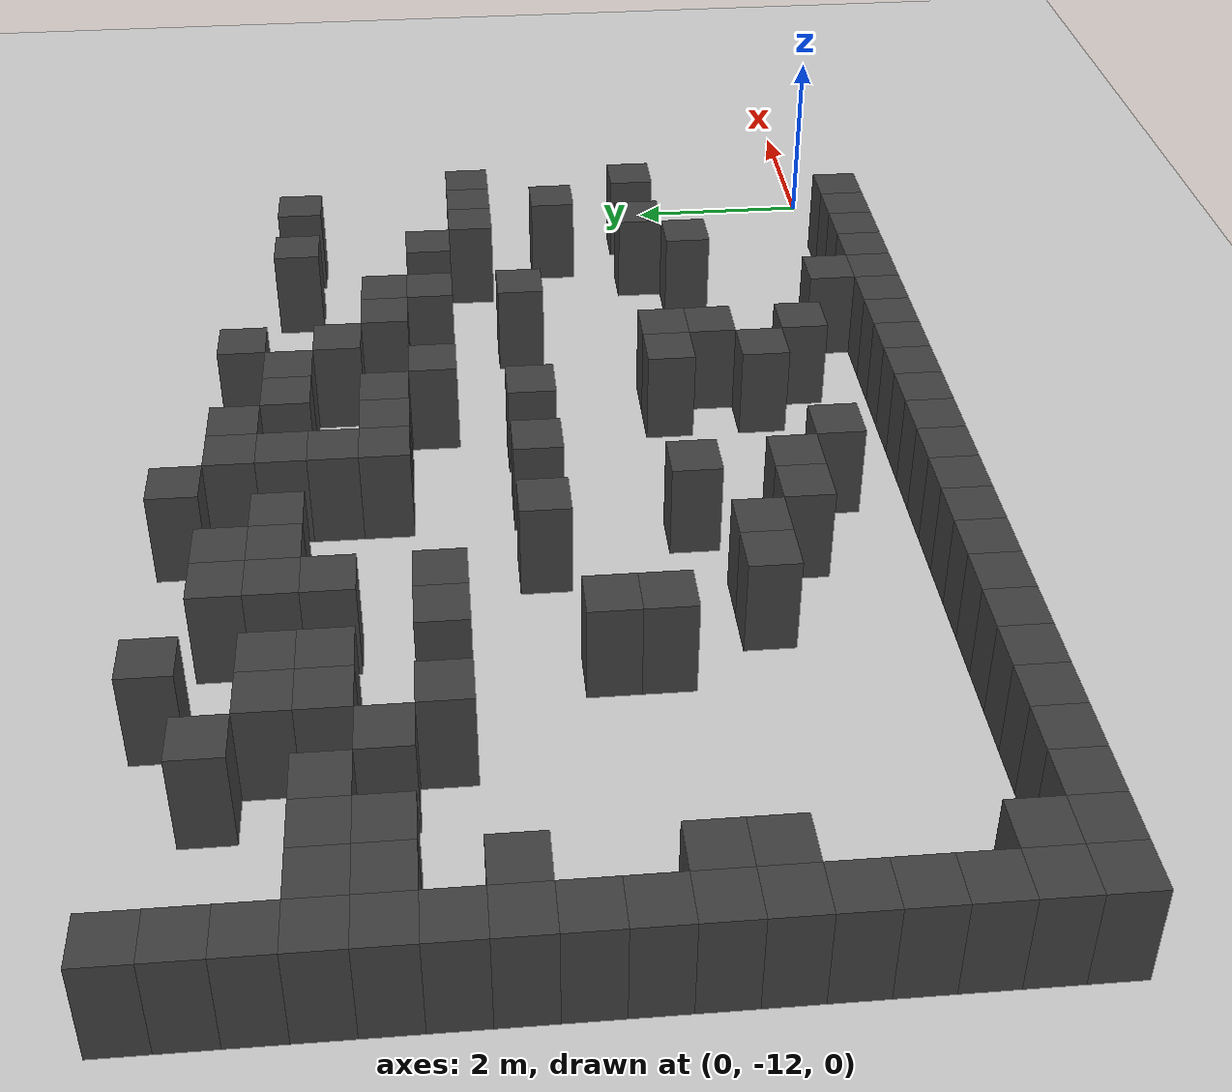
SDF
<sdf version="1.7">
 <world name="map_3955">
  <model name="ground_plane">
   <static>true</static>
   <link name="link">
    <collision name="collision">
     <geometry><plane><normal>0 0 1</normal><size>200 200</size></plane></geometry>
    </collision>
    <visual name="visual">
     <geometry><plane><normal>0 0 1</normal><size>200 200</size></plane></geometry>
     <material><ambient>0.8 0.8 0.8 1</ambient><diffuse>0.8 0.8 0.8 1</diffuse></material>
    </visual>
   </link>
  </model>
  <model name="maze_environment">
   <static>true</static>
   <link name="wall_415">
    <pose>-12.250 -4.750 0.500 0 0 0</pose>
    <collision name="col"><geometry><box><size>0.5 0.5 1.0</size></box></geometry></collision>
    <visual name="vis">
     <geometry><box><size>0.5 0.5 1.0</size></box></geometry>
     <material><ambient>0.15 0.15 0.15 1</ambient><diffuse>0.25 0.25 0.25 1</diffuse></material>
    </visual>
   </link>
   <link name="wall_416">
    <pose>-9.250 -4.750 0.500 0 0 0</pose>
    <collision name="col"><geometry><box><size>0.5 0.5 1.0</size></box></geometry></collision>
    <visual name="vis">
     <geometry><box><size>0.5 0.5 1.0</size></box></geometry>
     <material><ambient>0.15 0.15 0.15 1</ambient><diffuse>0.25 0.25 0.25 1</diffuse></material>
    </visual>
   </link>
   <link name="wall_417">
    <pose>-6.750 -4.750 0.500 0 0 0</pose>
    <collision name="col"><geometry><box><size>0.5 0.5 1.0</size></box></geometry></collision>
    <visual name="vis">
     <geometry><box><size>0.5 0.5 1.0</size></box></geometry>
     <material><ambient>0.15 0.15 0.15 1</ambient><diffuse>0.25 0.25 0.25 1</diffuse></material>
    </visual>
   </link>
   <link name="wall_426">
    <pose>-12.250 -5.250 0.500 0 0 0</pose>
    <collision name="col"><geometry><box><size>0.5 0.5 1.0</size></box></geometry></collision>
    <visual name="vis">
     <geometry><box><size>0.5 0.5 1.0</size></box></geometry>
     <material><ambient>0.15 0.15 0.15 1</ambient><diffuse>0.25 0.25 0.25 1</diffuse></material>
    </visual>
   </link>
   <link name="wall_427">
    <pose>-10.250 -5.250 0.500 0 0 0</pose>
    <collision name="col"><geometry><box><size>0.5 0.5 1.0</size></box></geometry></collision>
    <visual name="vis">
     <geometry><box><size>0.5 0.5 1.0</size></box></geometry>
     <material><ambient>0.15 0.15 0.15 1</ambient><diffuse>0.25 0.25 0.25 1</diffuse></material>
    </visual>
   </link>
   <link name="wall_428">
    <pose>-8.250 -5.250 0.500 0 0 0</pose>
    <collision name="col"><geometry><box><size>0.5 0.5 1.0</size></box></geometry></collision>
    <visual name="vis">
     <geometry><box><size>0.5 0.5 1.0</size></box></geometry>
     <material><ambient>0.15 0.15 0.15 1</ambient><diffuse>0.25 0.25 0.25 1</diffuse></material>
    </visual>
   </link>
   <link name="wall_429">
    <pose>-7.750 -5.250 0.500 0 0 0</pose>
    <collision name="col"><geometry><box><size>0.5 0.5 1.0</size></box></geometry></collision>
    <visual name="vis">
     <geometry><box><size>0.5 0.5 1.0</size></box></geometry>
     <material><ambient>0.15 0.15 0.15 1</ambient><diffuse>0.25 0.25 0.25 1</diffuse></material>
    </visual>
   </link>
   <link name="wall_430">
    <pose>-6.250 -5.250 0.500 0 0 0</pose>
    <collision name="col"><geometry><box><size>0.5 0.5 1.0</size></box></geometry></collision>
    <visual name="vis">
     <geometry><box><size>0.5 0.5 1.0</size></box></geometry>
     <material><ambient>0.15 0.15 0.15 1</ambient><diffuse>0.25 0.25 0.25 1</diffuse></material>
    </visual>
   </link>
   <link name="wall_431">
    <pose>-5.750 -5.250 0.500 0 0 0</pose>
    <collision name="col"><geometry><box><size>0.5 0.5 1.0</size></box></geometry></collision>
    <visual name="vis">
     <geometry><box><size>0.5 0.5 1.0</size></box></geometry>
     <material><ambient>0.15 0.15 0.15 1</ambient><diffuse>0.25 0.25 0.25 1</diffuse></material>
    </visual>
   </link>
   <link name="wall_432">
    <pose>-4.250 -5.250 0.500 0 0 0</pose>
    <collision name="col"><geometry><box><size>0.5 0.5 1.0</size></box></geometry></collision>
    <visual name="vis">
     <geometry><box><size>0.5 0.5 1.0</size></box></geometry>
     <material><ambient>0.15 0.15 0.15 1</ambient><diffuse>0.25 0.25 0.25 1</diffuse></material>
    </visual>
   </link>
   <link name="wall_436">
    <pose>-12.250 -5.750 0.500 0 0 0</pose>
    <collision name="col"><geometry><box><size>0.5 0.5 1.0</size></box></geometry></collision>
    <visual name="vis">
     <geometry><box><size>0.5 0.5 1.0</size></box></geometry>
     <material><ambient>0.15 0.15 0.15 1</ambient><diffuse>0.25 0.25 0.25 1</diffuse></material>
    </visual>
   </link>
   <link name="wall_437">
    <pose>-9.750 -5.750 0.500 0 0 0</pose>
    <collision name="col"><geometry><box><size>0.5 0.5 1.0</size></box></geometry></collision>
    <visual name="vis">
     <geometry><box><size>0.5 0.5 1.0</size></box></geometry>
     <material><ambient>0.15 0.15 0.15 1</ambient><diffuse>0.25 0.25 0.25 1</diffuse></material>
    </visual>
   </link>
   <link name="wall_438">
    <pose>-9.250 -5.750 0.500 0 0 0</pose>
    <collision name="col"><geometry><box><size>0.5 0.5 1.0</size></box></geometry></collision>
    <visual name="vis">
     <geometry><box><size>0.5 0.5 1.0</size></box></geometry>
     <material><ambient>0.15 0.15 0.15 1</ambient><diffuse>0.25 0.25 0.25 1</diffuse></material>
    </visual>
   </link>
   <link name="wall_439">
    <pose>-8.250 -5.750 0.500 0 0 0</pose>
    <collision name="col"><geometry><box><size>0.5 0.5 1.0</size></box></geometry></collision>
    <visual name="vis">
     <geometry><box><size>0.5 0.5 1.0</size></box></geometry>
     <material><ambient>0.15 0.15 0.15 1</ambient><diffuse>0.25 0.25 0.25 1</diffuse></material>
    </visual>
   </link>
   <link name="wall_440">
    <pose>-7.750 -5.750 0.500 0 0 0</pose>
    <collision name="col"><geometry><box><size>0.5 0.5 1.0</size></box></geometry></collision>
    <visual name="vis">
     <geometry><box><size>0.5 0.5 1.0</size></box></geometry>
     <material><ambient>0.15 0.15 0.15 1</ambient><diffuse>0.25 0.25 0.25 1</diffuse></material>
    </visual>
   </link>
   <link name="wall_441">
    <pose>-7.250 -5.750 0.500 0 0 0</pose>
    <collision name="col"><geometry><box><size>0.5 0.5 1.0</size></box></geometry></collision>
    <visual name="vis">
     <geometry><box><size>0.5 0.5 1.0</size></box></geometry>
     <material><ambient>0.15 0.15 0.15 1</ambient><diffuse>0.25 0.25 0.25 1</diffuse></material>
    </visual>
   </link>
   <link name="wall_442">
    <pose>-6.250 -5.750 0.500 0 0 0</pose>
    <collision name="col"><geometry><box><size>0.5 0.5 1.0</size></box></geometry></collision>
    <visual name="vis">
     <geometry><box><size>0.5 0.5 1.0</size></box></geometry>
     <material><ambient>0.15 0.15 0.15 1</ambient><diffuse>0.25 0.25 0.25 1</diffuse></material>
    </visual>
   </link>
   <link name="wall_443">
    <pose>-5.250 -5.750 0.500 0 0 0</pose>
    <collision name="col"><geometry><box><size>0.5 0.5 1.0</size></box></geometry></collision>
    <visual name="vis">
     <geometry><box><size>0.5 0.5 1.0</size></box></geometry>
     <material><ambient>0.15 0.15 0.15 1</ambient><diffuse>0.25 0.25 0.25 1</diffuse></material>
    </visual>
   </link>
   <link name="wall_444">
    <pose>-4.750 -5.750 0.500 0 0 0</pose>
    <collision name="col"><geometry><box><size>0.5 0.5 1.0</size></box></geometry></collision>
    <visual name="vis">
     <geometry><box><size>0.5 0.5 1.0</size></box></geometry>
     <material><ambient>0.15 0.15 0.15 1</ambient><diffuse>0.25 0.25 0.25 1</diffuse></material>
    </visual>
   </link>
   <link name="wall_445">
    <pose>-2.250 -5.750 0.500 0 0 0</pose>
    <collision name="col"><geometry><box><size>0.5 0.5 1.0</size></box></geometry></collision>
    <visual name="vis">
     <geometry><box><size>0.5 0.5 1.0</size></box></geometry>
     <material><ambient>0.15 0.15 0.15 1</ambient><diffuse>0.25 0.25 0.25 1</diffuse></material>
    </visual>
   </link>
   <link name="wall_446">
    <pose>-1.250 -5.750 0.500 0 0 0</pose>
    <collision name="col"><geometry><box><size>0.5 0.5 1.0</size></box></geometry></collision>
    <visual name="vis">
     <geometry><box><size>0.5 0.5 1.0</size></box></geometry>
     <material><ambient>0.15 0.15 0.15 1</ambient><diffuse>0.25 0.25 0.25 1</diffuse></material>
    </visual>
   </link>
   <link name="wall_451">
    <pose>-12.250 -6.250 0.500 0 0 0</pose>
    <collision name="col"><geometry><box><size>0.5 0.5 1.0</size></box></geometry></collision>
    <visual name="vis">
     <geometry><box><size>0.5 0.5 1.0</size></box></geometry>
     <material><ambient>0.15 0.15 0.15 1</ambient><diffuse>0.25 0.25 0.25 1</diffuse></material>
    </visual>
   </link>
   <link name="wall_452">
    <pose>-11.750 -6.250 0.500 0 0 0</pose>
    <collision name="col"><geometry><box><size>0.5 0.5 1.0</size></box></geometry></collision>
    <visual name="vis">
     <geometry><box><size>0.5 0.5 1.0</size></box></geometry>
     <material><ambient>0.15 0.15 0.15 1</ambient><diffuse>0.25 0.25 0.25 1</diffuse></material>
    </visual>
   </link>
   <link name="wall_453">
    <pose>-11.250 -6.250 0.500 0 0 0</pose>
    <collision name="col"><geometry><box><size>0.5 0.5 1.0</size></box></geometry></collision>
    <visual name="vis">
     <geometry><box><size>0.5 0.5 1.0</size></box></geometry>
     <material><ambient>0.15 0.15 0.15 1</ambient><diffuse>0.25 0.25 0.25 1</diffuse></material>
    </visual>
   </link>
   <link name="wall_454">
    <pose>-10.750 -6.250 0.500 0 0 0</pose>
    <collision name="col"><geometry><box><size>0.5 0.5 1.0</size></box></geometry></collision>
    <visual name="vis">
     <geometry><box><size>0.5 0.5 1.0</size></box></geometry>
     <material><ambient>0.15 0.15 0.15 1</ambient><diffuse>0.25 0.25 0.25 1</diffuse></material>
    </visual>
   </link>
   <link name="wall_455">
    <pose>-9.750 -6.250 0.500 0 0 0</pose>
    <collision name="col"><geometry><box><size>0.5 0.5 1.0</size></box></geometry></collision>
    <visual name="vis">
     <geometry><box><size>0.5 0.5 1.0</size></box></geometry>
     <material><ambient>0.15 0.15 0.15 1</ambient><diffuse>0.25 0.25 0.25 1</diffuse></material>
    </visual>
   </link>
   <link name="wall_456">
    <pose>-9.250 -6.250 0.500 0 0 0</pose>
    <collision name="col"><geometry><box><size>0.5 0.5 1.0</size></box></geometry></collision>
    <visual name="vis">
     <geometry><box><size>0.5 0.5 1.0</size></box></geometry>
     <material><ambient>0.15 0.15 0.15 1</ambient><diffuse>0.25 0.25 0.25 1</diffuse></material>
    </visual>
   </link>
   <link name="wall_457">
    <pose>-8.250 -6.250 0.500 0 0 0</pose>
    <collision name="col"><geometry><box><size>0.5 0.5 1.0</size></box></geometry></collision>
    <visual name="vis">
     <geometry><box><size>0.5 0.5 1.0</size></box></geometry>
     <material><ambient>0.15 0.15 0.15 1</ambient><diffuse>0.25 0.25 0.25 1</diffuse></material>
    </visual>
   </link>
   <link name="wall_458">
    <pose>-6.250 -6.250 0.500 0 0 0</pose>
    <collision name="col"><geometry><box><size>0.5 0.5 1.0</size></box></geometry></collision>
    <visual name="vis">
     <geometry><box><size>0.5 0.5 1.0</size></box></geometry>
     <material><ambient>0.15 0.15 0.15 1</ambient><diffuse>0.25 0.25 0.25 1</diffuse></material>
    </visual>
   </link>
   <link name="wall_459">
    <pose>-4.250 -6.250 0.500 0 0 0</pose>
    <collision name="col"><geometry><box><size>0.5 0.5 1.0</size></box></geometry></collision>
    <visual name="vis">
     <geometry><box><size>0.5 0.5 1.0</size></box></geometry>
     <material><ambient>0.15 0.15 0.15 1</ambient><diffuse>0.25 0.25 0.25 1</diffuse></material>
    </visual>
   </link>
   <link name="wall_466">
    <pose>-12.250 -6.750 0.500 0 0 0</pose>
    <collision name="col"><geometry><box><size>0.5 0.5 1.0</size></box></geometry></collision>
    <visual name="vis">
     <geometry><box><size>0.5 0.5 1.0</size></box></geometry>
     <material><ambient>0.15 0.15 0.15 1</ambient><diffuse>0.25 0.25 0.25 1</diffuse></material>
    </visual>
   </link>
   <link name="wall_467">
    <pose>-11.750 -6.750 0.500 0 0 0</pose>
    <collision name="col"><geometry><box><size>0.5 0.5 1.0</size></box></geometry></collision>
    <visual name="vis">
     <geometry><box><size>0.5 0.5 1.0</size></box></geometry>
     <material><ambient>0.15 0.15 0.15 1</ambient><diffuse>0.25 0.25 0.25 1</diffuse></material>
    </visual>
   </link>
   <link name="wall_468">
    <pose>-11.250 -6.750 0.500 0 0 0</pose>
    <collision name="col"><geometry><box><size>0.5 0.5 1.0</size></box></geometry></collision>
    <visual name="vis">
     <geometry><box><size>0.5 0.5 1.0</size></box></geometry>
     <material><ambient>0.15 0.15 0.15 1</ambient><diffuse>0.25 0.25 0.25 1</diffuse></material>
    </visual>
   </link>
   <link name="wall_469">
    <pose>-10.250 -6.750 0.500 0 0 0</pose>
    <collision name="col"><geometry><box><size>0.5 0.5 1.0</size></box></geometry></collision>
    <visual name="vis">
     <geometry><box><size>0.5 0.5 1.0</size></box></geometry>
     <material><ambient>0.15 0.15 0.15 1</ambient><diffuse>0.25 0.25 0.25 1</diffuse></material>
    </visual>
   </link>
   <link name="wall_470">
    <pose>-6.250 -6.750 0.500 0 0 0</pose>
    <collision name="col"><geometry><box><size>0.5 0.5 1.0</size></box></geometry></collision>
    <visual name="vis">
     <geometry><box><size>0.5 0.5 1.0</size></box></geometry>
     <material><ambient>0.15 0.15 0.15 1</ambient><diffuse>0.25 0.25 0.25 1</diffuse></material>
    </visual>
   </link>
   <link name="wall_471">
    <pose>-5.750 -6.750 0.500 0 0 0</pose>
    <collision name="col"><geometry><box><size>0.5 0.5 1.0</size></box></geometry></collision>
    <visual name="vis">
     <geometry><box><size>0.5 0.5 1.0</size></box></geometry>
     <material><ambient>0.15 0.15 0.15 1</ambient><diffuse>0.25 0.25 0.25 1</diffuse></material>
    </visual>
   </link>
   <link name="wall_472">
    <pose>-5.250 -6.750 0.500 0 0 0</pose>
    <collision name="col"><geometry><box><size>0.5 0.5 1.0</size></box></geometry></collision>
    <visual name="vis">
     <geometry><box><size>0.5 0.5 1.0</size></box></geometry>
     <material><ambient>0.15 0.15 0.15 1</ambient><diffuse>0.25 0.25 0.25 1</diffuse></material>
    </visual>
   </link>
   <link name="wall_473">
    <pose>-3.750 -6.750 0.500 0 0 0</pose>
    <collision name="col"><geometry><box><size>0.5 0.5 1.0</size></box></geometry></collision>
    <visual name="vis">
     <geometry><box><size>0.5 0.5 1.0</size></box></geometry>
     <material><ambient>0.15 0.15 0.15 1</ambient><diffuse>0.25 0.25 0.25 1</diffuse></material>
    </visual>
   </link>
   <link name="wall_474">
    <pose>-3.250 -6.750 0.500 0 0 0</pose>
    <collision name="col"><geometry><box><size>0.5 0.5 1.0</size></box></geometry></collision>
    <visual name="vis">
     <geometry><box><size>0.5 0.5 1.0</size></box></geometry>
     <material><ambient>0.15 0.15 0.15 1</ambient><diffuse>0.25 0.25 0.25 1</diffuse></material>
    </visual>
   </link>
   <link name="wall_477">
    <pose>-12.250 -7.250 0.500 0 0 0</pose>
    <collision name="col"><geometry><box><size>0.5 0.5 1.0</size></box></geometry></collision>
    <visual name="vis">
     <geometry><box><size>0.5 0.5 1.0</size></box></geometry>
     <material><ambient>0.15 0.15 0.15 1</ambient><diffuse>0.25 0.25 0.25 1</diffuse></material>
    </visual>
   </link>
   <link name="wall_478">
    <pose>-9.750 -7.250 0.500 0 0 0</pose>
    <collision name="col"><geometry><box><size>0.5 0.5 1.0</size></box></geometry></collision>
    <visual name="vis">
     <geometry><box><size>0.5 0.5 1.0</size></box></geometry>
     <material><ambient>0.15 0.15 0.15 1</ambient><diffuse>0.25 0.25 0.25 1</diffuse></material>
    </visual>
   </link>
   <link name="wall_479">
    <pose>-8.750 -7.250 0.500 0 0 0</pose>
    <collision name="col"><geometry><box><size>0.5 0.5 1.0</size></box></geometry></collision>
    <visual name="vis">
     <geometry><box><size>0.5 0.5 1.0</size></box></geometry>
     <material><ambient>0.15 0.15 0.15 1</ambient><diffuse>0.25 0.25 0.25 1</diffuse></material>
    </visual>
   </link>
   <link name="wall_480">
    <pose>-8.250 -7.250 0.500 0 0 0</pose>
    <collision name="col"><geometry><box><size>0.5 0.5 1.0</size></box></geometry></collision>
    <visual name="vis">
     <geometry><box><size>0.5 0.5 1.0</size></box></geometry>
     <material><ambient>0.15 0.15 0.15 1</ambient><diffuse>0.25 0.25 0.25 1</diffuse></material>
    </visual>
   </link>
   <link name="wall_481">
    <pose>-4.750 -7.250 0.500 0 0 0</pose>
    <collision name="col"><geometry><box><size>0.5 0.5 1.0</size></box></geometry></collision>
    <visual name="vis">
     <geometry><box><size>0.5 0.5 1.0</size></box></geometry>
     <material><ambient>0.15 0.15 0.15 1</ambient><diffuse>0.25 0.25 0.25 1</diffuse></material>
    </visual>
   </link>
   <link name="wall_482">
    <pose>-3.250 -7.250 0.500 0 0 0</pose>
    <collision name="col"><geometry><box><size>0.5 0.5 1.0</size></box></geometry></collision>
    <visual name="vis">
     <geometry><box><size>0.5 0.5 1.0</size></box></geometry>
     <material><ambient>0.15 0.15 0.15 1</ambient><diffuse>0.25 0.25 0.25 1</diffuse></material>
    </visual>
   </link>
   <link name="wall_483">
    <pose>-2.250 -7.250 0.500 0 0 0</pose>
    <collision name="col"><geometry><box><size>0.5 0.5 1.0</size></box></geometry></collision>
    <visual name="vis">
     <geometry><box><size>0.5 0.5 1.0</size></box></geometry>
     <material><ambient>0.15 0.15 0.15 1</ambient><diffuse>0.25 0.25 0.25 1</diffuse></material>
    </visual>
   </link>
   <link name="wall_490">
    <pose>-12.250 -7.750 0.500 0 0 0</pose>
    <collision name="col"><geometry><box><size>0.5 0.5 1.0</size></box></geometry></collision>
    <visual name="vis">
     <geometry><box><size>0.5 0.5 1.0</size></box></geometry>
     <material><ambient>0.15 0.15 0.15 1</ambient><diffuse>0.25 0.25 0.25 1</diffuse></material>
    </visual>
   </link>
   <link name="wall_491">
    <pose>-11.750 -7.750 0.500 0 0 0</pose>
    <collision name="col"><geometry><box><size>0.5 0.5 1.0</size></box></geometry></collision>
    <visual name="vis">
     <geometry><box><size>0.5 0.5 1.0</size></box></geometry>
     <material><ambient>0.15 0.15 0.15 1</ambient><diffuse>0.25 0.25 0.25 1</diffuse></material>
    </visual>
   </link>
   <link name="wall_492">
    <pose>-1.750 -7.750 0.500 0 0 0</pose>
    <collision name="col"><geometry><box><size>0.5 0.5 1.0</size></box></geometry></collision>
    <visual name="vis">
     <geometry><box><size>0.5 0.5 1.0</size></box></geometry>
     <material><ambient>0.15 0.15 0.15 1</ambient><diffuse>0.25 0.25 0.25 1</diffuse></material>
    </visual>
   </link>
   <link name="wall_493">
    <pose>-1.250 -7.750 0.500 0 0 0</pose>
    <collision name="col"><geometry><box><size>0.5 0.5 1.0</size></box></geometry></collision>
    <visual name="vis">
     <geometry><box><size>0.5 0.5 1.0</size></box></geometry>
     <material><ambient>0.15 0.15 0.15 1</ambient><diffuse>0.25 0.25 0.25 1</diffuse></material>
    </visual>
   </link>
   <link name="wall_494">
    <pose>-0.750 -7.750 0.500 0 0 0</pose>
    <collision name="col"><geometry><box><size>0.5 0.5 1.0</size></box></geometry></collision>
    <visual name="vis">
     <geometry><box><size>0.5 0.5 1.0</size></box></geometry>
     <material><ambient>0.15 0.15 0.15 1</ambient><diffuse>0.25 0.25 0.25 1</diffuse></material>
    </visual>
   </link>
   <link name="wall_504">
    <pose>-12.250 -8.250 0.500 0 0 0</pose>
    <collision name="col"><geometry><box><size>0.5 0.5 1.0</size></box></geometry></collision>
    <visual name="vis">
     <geometry><box><size>0.5 0.5 1.0</size></box></geometry>
     <material><ambient>0.15 0.15 0.15 1</ambient><diffuse>0.25 0.25 0.25 1</diffuse></material>
    </visual>
   </link>
   <link name="wall_505">
    <pose>-7.250 -8.250 0.500 0 0 0</pose>
    <collision name="col"><geometry><box><size>0.5 0.5 1.0</size></box></geometry></collision>
    <visual name="vis">
     <geometry><box><size>0.5 0.5 1.0</size></box></geometry>
     <material><ambient>0.15 0.15 0.15 1</ambient><diffuse>0.25 0.25 0.25 1</diffuse></material>
    </visual>
   </link>
   <link name="wall_506">
    <pose>-6.250 -8.250 0.500 0 0 0</pose>
    <collision name="col"><geometry><box><size>0.5 0.5 1.0</size></box></geometry></collision>
    <visual name="vis">
     <geometry><box><size>0.5 0.5 1.0</size></box></geometry>
     <material><ambient>0.15 0.15 0.15 1</ambient><diffuse>0.25 0.25 0.25 1</diffuse></material>
    </visual>
   </link>
   <link name="wall_507">
    <pose>-5.250 -8.250 0.500 0 0 0</pose>
    <collision name="col"><geometry><box><size>0.5 0.5 1.0</size></box></geometry></collision>
    <visual name="vis">
     <geometry><box><size>0.5 0.5 1.0</size></box></geometry>
     <material><ambient>0.15 0.15 0.15 1</ambient><diffuse>0.25 0.25 0.25 1</diffuse></material>
    </visual>
   </link>
   <link name="wall_508">
    <pose>-3.250 -8.250 0.500 0 0 0</pose>
    <collision name="col"><geometry><box><size>0.5 0.5 1.0</size></box></geometry></collision>
    <visual name="vis">
     <geometry><box><size>0.5 0.5 1.0</size></box></geometry>
     <material><ambient>0.15 0.15 0.15 1</ambient><diffuse>0.25 0.25 0.25 1</diffuse></material>
    </visual>
   </link>
   <link name="wall_514">
    <pose>-12.250 -8.750 0.500 0 0 0</pose>
    <collision name="col"><geometry><box><size>0.5 0.5 1.0</size></box></geometry></collision>
    <visual name="vis">
     <geometry><box><size>0.5 0.5 1.0</size></box></geometry>
     <material><ambient>0.15 0.15 0.15 1</ambient><diffuse>0.25 0.25 0.25 1</diffuse></material>
    </visual>
   </link>
   <link name="wall_515">
    <pose>-8.750 -8.750 0.500 0 0 0</pose>
    <collision name="col"><geometry><box><size>0.5 0.5 1.0</size></box></geometry></collision>
    <visual name="vis">
     <geometry><box><size>0.5 0.5 1.0</size></box></geometry>
     <material><ambient>0.15 0.15 0.15 1</ambient><diffuse>0.25 0.25 0.25 1</diffuse></material>
    </visual>
   </link>
   <link name="wall_516">
    <pose>-1.250 -8.750 0.500 0 0 0</pose>
    <collision name="col"><geometry><box><size>0.5 0.5 1.0</size></box></geometry></collision>
    <visual name="vis">
     <geometry><box><size>0.5 0.5 1.0</size></box></geometry>
     <material><ambient>0.15 0.15 0.15 1</ambient><diffuse>0.25 0.25 0.25 1</diffuse></material>
    </visual>
   </link>
   <link name="wall_525">
    <pose>-12.250 -9.250 0.500 0 0 0</pose>
    <collision name="col"><geometry><box><size>0.5 0.5 1.0</size></box></geometry></collision>
    <visual name="vis">
     <geometry><box><size>0.5 0.5 1.0</size></box></geometry>
     <material><ambient>0.15 0.15 0.15 1</ambient><diffuse>0.25 0.25 0.25 1</diffuse></material>
    </visual>
   </link>
   <link name="wall_526">
    <pose>-11.750 -9.250 0.500 0 0 0</pose>
    <collision name="col"><geometry><box><size>0.5 0.5 1.0</size></box></geometry></collision>
    <visual name="vis">
     <geometry><box><size>0.5 0.5 1.0</size></box></geometry>
     <material><ambient>0.15 0.15 0.15 1</ambient><diffuse>0.25 0.25 0.25 1</diffuse></material>
    </visual>
   </link>
   <link name="wall_527">
    <pose>-8.750 -9.250 0.500 0 0 0</pose>
    <collision name="col"><geometry><box><size>0.5 0.5 1.0</size></box></geometry></collision>
    <visual name="vis">
     <geometry><box><size>0.5 0.5 1.0</size></box></geometry>
     <material><ambient>0.15 0.15 0.15 1</ambient><diffuse>0.25 0.25 0.25 1</diffuse></material>
    </visual>
   </link>
   <link name="wall_536">
    <pose>-12.250 -9.750 0.500 0 0 0</pose>
    <collision name="col"><geometry><box><size>0.5 0.5 1.0</size></box></geometry></collision>
    <visual name="vis">
     <geometry><box><size>0.5 0.5 1.0</size></box></geometry>
     <material><ambient>0.15 0.15 0.15 1</ambient><diffuse>0.25 0.25 0.25 1</diffuse></material>
    </visual>
   </link>
   <link name="wall_537">
    <pose>-11.750 -9.750 0.500 0 0 0</pose>
    <collision name="col"><geometry><box><size>0.5 0.5 1.0</size></box></geometry></collision>
    <visual name="vis">
     <geometry><box><size>0.5 0.5 1.0</size></box></geometry>
     <material><ambient>0.15 0.15 0.15 1</ambient><diffuse>0.25 0.25 0.25 1</diffuse></material>
    </visual>
   </link>
   <link name="wall_538">
    <pose>-6.750 -9.750 0.500 0 0 0</pose>
    <collision name="col"><geometry><box><size>0.5 0.5 1.0</size></box></geometry></collision>
    <visual name="vis">
     <geometry><box><size>0.5 0.5 1.0</size></box></geometry>
     <material><ambient>0.15 0.15 0.15 1</ambient><diffuse>0.25 0.25 0.25 1</diffuse></material>
    </visual>
   </link>
   <link name="wall_539">
    <pose>-4.750 -9.750 0.500 0 0 0</pose>
    <collision name="col"><geometry><box><size>0.5 0.5 1.0</size></box></geometry></collision>
    <visual name="vis">
     <geometry><box><size>0.5 0.5 1.0</size></box></geometry>
     <material><ambient>0.15 0.15 0.15 1</ambient><diffuse>0.25 0.25 0.25 1</diffuse></material>
    </visual>
   </link>
   <link name="wall_540">
    <pose>-4.250 -9.750 0.500 0 0 0</pose>
    <collision name="col"><geometry><box><size>0.5 0.5 1.0</size></box></geometry></collision>
    <visual name="vis">
     <geometry><box><size>0.5 0.5 1.0</size></box></geometry>
     <material><ambient>0.15 0.15 0.15 1</ambient><diffuse>0.25 0.25 0.25 1</diffuse></material>
    </visual>
   </link>
   <link name="wall_541">
    <pose>-1.750 -9.750 0.500 0 0 0</pose>
    <collision name="col"><geometry><box><size>0.5 0.5 1.0</size></box></geometry></collision>
    <visual name="vis">
     <geometry><box><size>0.5 0.5 1.0</size></box></geometry>
     <material><ambient>0.15 0.15 0.15 1</ambient><diffuse>0.25 0.25 0.25 1</diffuse></material>
    </visual>
   </link>
   <link name="wall_542">
    <pose>-0.750 -9.750 0.500 0 0 0</pose>
    <collision name="col"><geometry><box><size>0.5 0.5 1.0</size></box></geometry></collision>
    <visual name="vis">
     <geometry><box><size>0.5 0.5 1.0</size></box></geometry>
     <material><ambient>0.15 0.15 0.15 1</ambient><diffuse>0.25 0.25 0.25 1</diffuse></material>
    </visual>
   </link>
   <link name="wall_550">
    <pose>-12.250 -10.250 0.500 0 0 0</pose>
    <collision name="col"><geometry><box><size>0.5 0.5 1.0</size></box></geometry></collision>
    <visual name="vis">
     <geometry><box><size>0.5 0.5 1.0</size></box></geometry>
     <material><ambient>0.15 0.15 0.15 1</ambient><diffuse>0.25 0.25 0.25 1</diffuse></material>
    </visual>
   </link>
   <link name="wall_551">
    <pose>-8.250 -10.250 0.500 0 0 0</pose>
    <collision name="col"><geometry><box><size>0.5 0.5 1.0</size></box></geometry></collision>
    <visual name="vis">
     <geometry><box><size>0.5 0.5 1.0</size></box></geometry>
     <material><ambient>0.15 0.15 0.15 1</ambient><diffuse>0.25 0.25 0.25 1</diffuse></material>
    </visual>
   </link>
   <link name="wall_552">
    <pose>-7.750 -10.250 0.500 0 0 0</pose>
    <collision name="col"><geometry><box><size>0.5 0.5 1.0</size></box></geometry></collision>
    <visual name="vis">
     <geometry><box><size>0.5 0.5 1.0</size></box></geometry>
     <material><ambient>0.15 0.15 0.15 1</ambient><diffuse>0.25 0.25 0.25 1</diffuse></material>
    </visual>
   </link>
   <link name="wall_553">
    <pose>-4.250 -10.250 0.500 0 0 0</pose>
    <collision name="col"><geometry><box><size>0.5 0.5 1.0</size></box></geometry></collision>
    <visual name="vis">
     <geometry><box><size>0.5 0.5 1.0</size></box></geometry>
     <material><ambient>0.15 0.15 0.15 1</ambient><diffuse>0.25 0.25 0.25 1</diffuse></material>
    </visual>
   </link>
   <link name="wall_554">
    <pose>-2.250 -10.250 0.500 0 0 0</pose>
    <collision name="col"><geometry><box><size>0.5 0.5 1.0</size></box></geometry></collision>
    <visual name="vis">
     <geometry><box><size>0.5 0.5 1.0</size></box></geometry>
     <material><ambient>0.15 0.15 0.15 1</ambient><diffuse>0.25 0.25 0.25 1</diffuse></material>
    </visual>
   </link>
   <link name="wall_558">
    <pose>-12.250 -10.750 0.500 0 0 0</pose>
    <collision name="col"><geometry><box><size>0.5 0.5 1.0</size></box></geometry></collision>
    <visual name="vis">
     <geometry><box><size>0.5 0.5 1.0</size></box></geometry>
     <material><ambient>0.15 0.15 0.15 1</ambient><diffuse>0.25 0.25 0.25 1</diffuse></material>
    </visual>
   </link>
   <link name="wall_559">
    <pose>-7.250 -10.750 0.500 0 0 0</pose>
    <collision name="col"><geometry><box><size>0.5 0.5 1.0</size></box></geometry></collision>
    <visual name="vis">
     <geometry><box><size>0.5 0.5 1.0</size></box></geometry>
     <material><ambient>0.15 0.15 0.15 1</ambient><diffuse>0.25 0.25 0.25 1</diffuse></material>
    </visual>
   </link>
   <link name="wall_560">
    <pose>-6.750 -10.750 0.500 0 0 0</pose>
    <collision name="col"><geometry><box><size>0.5 0.5 1.0</size></box></geometry></collision>
    <visual name="vis">
     <geometry><box><size>0.5 0.5 1.0</size></box></geometry>
     <material><ambient>0.15 0.15 0.15 1</ambient><diffuse>0.25 0.25 0.25 1</diffuse></material>
    </visual>
   </link>
   <link name="wall_561">
    <pose>-4.750 -10.750 0.500 0 0 0</pose>
    <collision name="col"><geometry><box><size>0.5 0.5 1.0</size></box></geometry></collision>
    <visual name="vis">
     <geometry><box><size>0.5 0.5 1.0</size></box></geometry>
     <material><ambient>0.15 0.15 0.15 1</ambient><diffuse>0.25 0.25 0.25 1</diffuse></material>
    </visual>
   </link>
   <link name="wall_572">
    <pose>-12.250 -11.250 0.500 0 0 0</pose>
    <collision name="col"><geometry><box><size>0.5 0.5 1.0</size></box></geometry></collision>
    <visual name="vis">
     <geometry><box><size>0.5 0.5 1.0</size></box></geometry>
     <material><ambient>0.15 0.15 0.15 1</ambient><diffuse>0.25 0.25 0.25 1</diffuse></material>
    </visual>
   </link>
   <link name="wall_573">
    <pose>-6.250 -11.250 0.500 0 0 0</pose>
    <collision name="col"><geometry><box><size>0.5 0.5 1.0</size></box></geometry></collision>
    <visual name="vis">
     <geometry><box><size>0.5 0.5 1.0</size></box></geometry>
     <material><ambient>0.15 0.15 0.15 1</ambient><diffuse>0.25 0.25 0.25 1</diffuse></material>
    </visual>
   </link>
   <link name="wall_574">
    <pose>-4.250 -11.250 0.500 0 0 0</pose>
    <collision name="col"><geometry><box><size>0.5 0.5 1.0</size></box></geometry></collision>
    <visual name="vis">
     <geometry><box><size>0.5 0.5 1.0</size></box></geometry>
     <material><ambient>0.15 0.15 0.15 1</ambient><diffuse>0.25 0.25 0.25 1</diffuse></material>
    </visual>
   </link>
   <link name="wall_582">
    <pose>-12.250 -11.750 0.500 0 0 0</pose>
    <collision name="col"><geometry><box><size>0.5 0.5 1.0</size></box></geometry></collision>
    <visual name="vis">
     <geometry><box><size>0.5 0.5 1.0</size></box></geometry>
     <material><ambient>0.15 0.15 0.15 1</ambient><diffuse>0.25 0.25 0.25 1</diffuse></material>
    </visual>
   </link>
   <link name="wall_583">
    <pose>-11.750 -11.750 0.500 0 0 0</pose>
    <collision name="col"><geometry><box><size>0.5 0.5 1.0</size></box></geometry></collision>
    <visual name="vis">
     <geometry><box><size>0.5 0.5 1.0</size></box></geometry>
     <material><ambient>0.15 0.15 0.15 1</ambient><diffuse>0.25 0.25 0.25 1</diffuse></material>
    </visual>
   </link>
   <link name="wall_584">
    <pose>-3.250 -11.750 0.500 0 0 0</pose>
    <collision name="col"><geometry><box><size>0.5 0.5 1.0</size></box></geometry></collision>
    <visual name="vis">
     <geometry><box><size>0.5 0.5 1.0</size></box></geometry>
     <material><ambient>0.15 0.15 0.15 1</ambient><diffuse>0.25 0.25 0.25 1</diffuse></material>
    </visual>
   </link>
   <link name="wall_591">
    <pose>-12.250 -12.250 0.500 0 0 0</pose>
    <collision name="col"><geometry><box><size>0.5 0.5 1.0</size></box></geometry></collision>
    <visual name="vis">
     <geometry><box><size>0.5 0.5 1.0</size></box></geometry>
     <material><ambient>0.15 0.15 0.15 1</ambient><diffuse>0.25 0.25 0.25 1</diffuse></material>
    </visual>
   </link>
   <link name="wall_592">
    <pose>-11.750 -12.250 0.500 0 0 0</pose>
    <collision name="col"><geometry><box><size>0.5 0.5 1.0</size></box></geometry></collision>
    <visual name="vis">
     <geometry><box><size>0.5 0.5 1.0</size></box></geometry>
     <material><ambient>0.15 0.15 0.15 1</ambient><diffuse>0.25 0.25 0.25 1</diffuse></material>
    </visual>
   </link>
   <link name="wall_593">
    <pose>-11.250 -12.250 0.500 0 0 0</pose>
    <collision name="col"><geometry><box><size>0.5 0.5 1.0</size></box></geometry></collision>
    <visual name="vis">
     <geometry><box><size>0.5 0.5 1.0</size></box></geometry>
     <material><ambient>0.15 0.15 0.15 1</ambient><diffuse>0.25 0.25 0.25 1</diffuse></material>
    </visual>
   </link>
   <link name="wall_594">
    <pose>-10.750 -12.250 0.500 0 0 0</pose>
    <collision name="col"><geometry><box><size>0.5 0.5 1.0</size></box></geometry></collision>
    <visual name="vis">
     <geometry><box><size>0.5 0.5 1.0</size></box></geometry>
     <material><ambient>0.15 0.15 0.15 1</ambient><diffuse>0.25 0.25 0.25 1</diffuse></material>
    </visual>
   </link>
   <link name="wall_595">
    <pose>-10.250 -12.250 0.500 0 0 0</pose>
    <collision name="col"><geometry><box><size>0.5 0.5 1.0</size></box></geometry></collision>
    <visual name="vis">
     <geometry><box><size>0.5 0.5 1.0</size></box></geometry>
     <material><ambient>0.15 0.15 0.15 1</ambient><diffuse>0.25 0.25 0.25 1</diffuse></material>
    </visual>
   </link>
   <link name="wall_596">
    <pose>-9.750 -12.250 0.500 0 0 0</pose>
    <collision name="col"><geometry><box><size>0.5 0.5 1.0</size></box></geometry></collision>
    <visual name="vis">
     <geometry><box><size>0.5 0.5 1.0</size></box></geometry>
     <material><ambient>0.15 0.15 0.15 1</ambient><diffuse>0.25 0.25 0.25 1</diffuse></material>
    </visual>
   </link>
   <link name="wall_597">
    <pose>-9.250 -12.250 0.500 0 0 0</pose>
    <collision name="col"><geometry><box><size>0.5 0.5 1.0</size></box></geometry></collision>
    <visual name="vis">
     <geometry><box><size>0.5 0.5 1.0</size></box></geometry>
     <material><ambient>0.15 0.15 0.15 1</ambient><diffuse>0.25 0.25 0.25 1</diffuse></material>
    </visual>
   </link>
   <link name="wall_598">
    <pose>-8.750 -12.250 0.500 0 0 0</pose>
    <collision name="col"><geometry><box><size>0.5 0.5 1.0</size></box></geometry></collision>
    <visual name="vis">
     <geometry><box><size>0.5 0.5 1.0</size></box></geometry>
     <material><ambient>0.15 0.15 0.15 1</ambient><diffuse>0.25 0.25 0.25 1</diffuse></material>
    </visual>
   </link>
   <link name="wall_599">
    <pose>-8.250 -12.250 0.500 0 0 0</pose>
    <collision name="col"><geometry><box><size>0.5 0.5 1.0</size></box></geometry></collision>
    <visual name="vis">
     <geometry><box><size>0.5 0.5 1.0</size></box></geometry>
     <material><ambient>0.15 0.15 0.15 1</ambient><diffuse>0.25 0.25 0.25 1</diffuse></material>
    </visual>
   </link>
   <link name="wall_600">
    <pose>-7.750 -12.250 0.500 0 0 0</pose>
    <collision name="col"><geometry><box><size>0.5 0.5 1.0</size></box></geometry></collision>
    <visual name="vis">
     <geometry><box><size>0.5 0.5 1.0</size></box></geometry>
     <material><ambient>0.15 0.15 0.15 1</ambient><diffuse>0.25 0.25 0.25 1</diffuse></material>
    </visual>
   </link>
   <link name="wall_601">
    <pose>-7.250 -12.250 0.500 0 0 0</pose>
    <collision name="col"><geometry><box><size>0.5 0.5 1.0</size></box></geometry></collision>
    <visual name="vis">
     <geometry><box><size>0.5 0.5 1.0</size></box></geometry>
     <material><ambient>0.15 0.15 0.15 1</ambient><diffuse>0.25 0.25 0.25 1</diffuse></material>
    </visual>
   </link>
   <link name="wall_602">
    <pose>-6.750 -12.250 0.500 0 0 0</pose>
    <collision name="col"><geometry><box><size>0.5 0.5 1.0</size></box></geometry></collision>
    <visual name="vis">
     <geometry><box><size>0.5 0.5 1.0</size></box></geometry>
     <material><ambient>0.15 0.15 0.15 1</ambient><diffuse>0.25 0.25 0.25 1</diffuse></material>
    </visual>
   </link>
   <link name="wall_603">
    <pose>-6.250 -12.250 0.500 0 0 0</pose>
    <collision name="col"><geometry><box><size>0.5 0.5 1.0</size></box></geometry></collision>
    <visual name="vis">
     <geometry><box><size>0.5 0.5 1.0</size></box></geometry>
     <material><ambient>0.15 0.15 0.15 1</ambient><diffuse>0.25 0.25 0.25 1</diffuse></material>
    </visual>
   </link>
   <link name="wall_604">
    <pose>-5.750 -12.250 0.500 0 0 0</pose>
    <collision name="col"><geometry><box><size>0.5 0.5 1.0</size></box></geometry></collision>
    <visual name="vis">
     <geometry><box><size>0.5 0.5 1.0</size></box></geometry>
     <material><ambient>0.15 0.15 0.15 1</ambient><diffuse>0.25 0.25 0.25 1</diffuse></material>
    </visual>
   </link>
   <link name="wall_605">
    <pose>-5.250 -12.250 0.500 0 0 0</pose>
    <collision name="col"><geometry><box><size>0.5 0.5 1.0</size></box></geometry></collision>
    <visual name="vis">
     <geometry><box><size>0.5 0.5 1.0</size></box></geometry>
     <material><ambient>0.15 0.15 0.15 1</ambient><diffuse>0.25 0.25 0.25 1</diffuse></material>
    </visual>
   </link>
   <link name="wall_606">
    <pose>-4.750 -12.250 0.500 0 0 0</pose>
    <collision name="col"><geometry><box><size>0.5 0.5 1.0</size></box></geometry></collision>
    <visual name="vis">
     <geometry><box><size>0.5 0.5 1.0</size></box></geometry>
     <material><ambient>0.15 0.15 0.15 1</ambient><diffuse>0.25 0.25 0.25 1</diffuse></material>
    </visual>
   </link>
   <link name="wall_607">
    <pose>-4.250 -12.250 0.500 0 0 0</pose>
    <collision name="col"><geometry><box><size>0.5 0.5 1.0</size></box></geometry></collision>
    <visual name="vis">
     <geometry><box><size>0.5 0.5 1.0</size></box></geometry>
     <material><ambient>0.15 0.15 0.15 1</ambient><diffuse>0.25 0.25 0.25 1</diffuse></material>
    </visual>
   </link>
   <link name="wall_608">
    <pose>-3.750 -12.250 0.500 0 0 0</pose>
    <collision name="col"><geometry><box><size>0.5 0.5 1.0</size></box></geometry></collision>
    <visual name="vis">
     <geometry><box><size>0.5 0.5 1.0</size></box></geometry>
     <material><ambient>0.15 0.15 0.15 1</ambient><diffuse>0.25 0.25 0.25 1</diffuse></material>
    </visual>
   </link>
   <link name="wall_609">
    <pose>-3.250 -12.250 0.500 0 0 0</pose>
    <collision name="col"><geometry><box><size>0.5 0.5 1.0</size></box></geometry></collision>
    <visual name="vis">
     <geometry><box><size>0.5 0.5 1.0</size></box></geometry>
     <material><ambient>0.15 0.15 0.15 1</ambient><diffuse>0.25 0.25 0.25 1</diffuse></material>
    </visual>
   </link>
   <link name="wall_610">
    <pose>-2.750 -12.250 0.500 0 0 0</pose>
    <collision name="col"><geometry><box><size>0.5 0.5 1.0</size></box></geometry></collision>
    <visual name="vis">
     <geometry><box><size>0.5 0.5 1.0</size></box></geometry>
     <material><ambient>0.15 0.15 0.15 1</ambient><diffuse>0.25 0.25 0.25 1</diffuse></material>
    </visual>
   </link>
   <link name="wall_611">
    <pose>-2.250 -12.250 0.500 0 0 0</pose>
    <collision name="col"><geometry><box><size>0.5 0.5 1.0</size></box></geometry></collision>
    <visual name="vis">
     <geometry><box><size>0.5 0.5 1.0</size></box></geometry>
     <material><ambient>0.15 0.15 0.15 1</ambient><diffuse>0.25 0.25 0.25 1</diffuse></material>
    </visual>
   </link>
   <link name="wall_612">
    <pose>-1.750 -12.250 0.500 0 0 0</pose>
    <collision name="col"><geometry><box><size>0.5 0.5 1.0</size></box></geometry></collision>
    <visual name="vis">
     <geometry><box><size>0.5 0.5 1.0</size></box></geometry>
     <material><ambient>0.15 0.15 0.15 1</ambient><diffuse>0.25 0.25 0.25 1</diffuse></material>
    </visual>
   </link>
   <link name="wall_613">
    <pose>-1.250 -12.250 0.500 0 0 0</pose>
    <collision name="col"><geometry><box><size>0.5 0.5 1.0</size></box></geometry></collision>
    <visual name="vis">
     <geometry><box><size>0.5 0.5 1.0</size></box></geometry>
     <material><ambient>0.15 0.15 0.15 1</ambient><diffuse>0.25 0.25 0.25 1</diffuse></material>
    </visual>
   </link>
  </model>
 </world>
</sdf>
